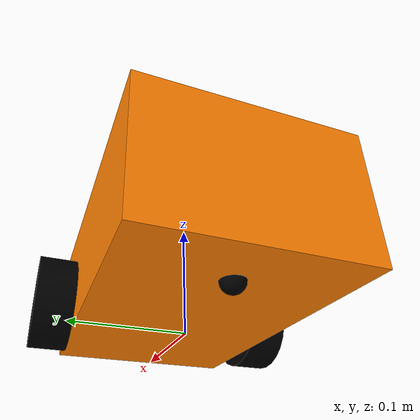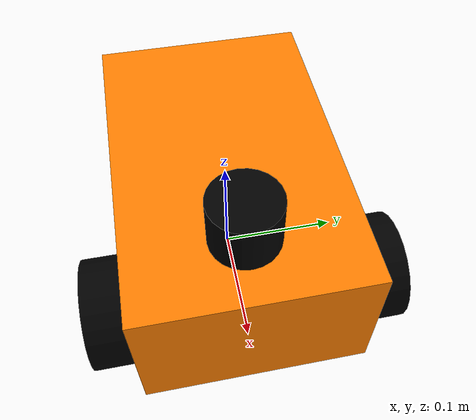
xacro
<?xml version="1.0"?>

<robot name="bumperbot" xmlns:xacro="http://ros.org/wiki/xacro">

    <xacro:property name = "base_length" value = "0.280"/>
    <xacro:property name = "base_width" value = "0.180"/>
    <xacro:property name = "base_height" value = "0.115"/>
    <xacro:property name = "wheel_radius" value = "0.044"/>
    <xacro:property name = "wheel_length" value = "0.035"/>
    <xacro:property name = "laser_radius" value = "0.0275"/>
    <xacro:property name = "laser_length" value = "0.0425"/>

    <!-- Load Simulated or Real Hardware Interfaces -->
    <xacro:arg name="is_sim" default="false"/>

    <!-- Include ros2_control Plugins -->
    <xacro:include filename="$(find bumperbot_description)/urdf/bumperbot_ros2_control.xacro" />

    <link name="base_footprint"/>

    <link name = "base_link">

        <inertial>
            <mass value = "2.5"/>
            <origin rpy = "0 0 0" xyz = "0 0 0"/>
            <inertia ixx = "0.009505" ixy = "0" ixz = "0" iyy = "0.019089" iyz = "0" izz = "0.023083"/>
        </inertial>

        <visual>
            <origin rpy = "0 0 0" xyz = "0 0 0"/>
            <geometry>
                <box size = "${base_length} ${base_width} ${base_height}"/>
            </geometry>
            <material name = "orange">
                <color rgba = "1 0.5 0 1"/>
            </material>
        </visual>

        <collision>
            <origin rpy = "0 0 0" xyz = "0 0 0"/>
            <geometry>
                <box size = "${base_length} ${base_width} ${base_height}"/>
            </geometry>
        </collision>

    </link>

    <joint name = "base_joint" type = "fixed">

        <parent link = "base_footprint"/>
        <child link = "base_link"/>
        <origin rpy = "0 0 0" xyz = "0 0 0.0675"/>

    </joint>

    <link name = "right_wheel_link">

        <inertial>
            <mass value = "0.05"/>
            <origin rpy = "1.57 0 0" xyz = "0 0 0"/>
            <inertia ixx = "0.000029" ixy = "0" ixz = "0" iyy = "0.000029" iyz = "0" izz = "0.000048"/>
        </inertial>

        <visual>
            <origin rpy = "1.57 0 0" xyz = "0 0 0"/>
            <geometry>
                <cylinder radius = "${wheel_radius}" length = "${wheel_length}"/>
            </geometry>
            <material name = "black">
                <color rgba = "0 0 0 1"/>
            </material>
        </visual>

        <collision>
            <origin rpy = "1.57 0 0" xyz = "0 0 0"/>
            <geometry>
                <cylinder radius = "${wheel_radius}" length = "${wheel_length}"/>
            </geometry>
        </collision>

    </link>

    <joint name = "right_wheel_joint" type = "continuous">

        <parent link = "base_link"/>
        <child link = "right_wheel_link"/>
        <axis xyz = "0 1 0"/>
        <origin rpy = "0 0 0" xyz = "0.08 -0.1075 -0.0235"/>

    </joint>

    <link name = "left_wheel_link">

        <inertial>
            <mass value = "0.05"/>
            <origin rpy = "-1.57 0 0" xyz = "0 0 0"/>
            <inertia ixx = "0.000029" ixy = "0" ixz = "0" iyy = "0.000029" iyz = "0" izz = "0.000048"/>
        </inertial>

        <visual>
            <origin rpy = "-1.57 0 0" xyz = "0 0 0"/>
            <geometry>
                <cylinder radius = "${wheel_radius}" length = "${wheel_length}"/>
            </geometry>
            <material name = "black">
                <color rgba = "0 0 0 1"/>
            </material>
        </visual>

        <collision>
            <origin rpy = "-1.57 0 0" xyz = "0 0 0"/>
            <geometry>
                <cylinder radius = "${wheel_radius}" length = "${wheel_length}"/>
            </geometry>
        </collision>

    </link>

    <joint name = "left_wheel_joint" type = "continuous">

        <parent link = "base_link"/>
        <child link = "left_wheel_link"/>
        <axis xyz = "0 1 0"/>
        <origin rpy = "0 0 0" xyz = "0.08 0.1075 -0.0235"/>

    </joint>

    <link name = "castor_link">

        <inertial>
            <mass value = "0.02"/>
            <origin rpy = "0 0 0" xyz = "0 0 0"/>
            <inertia ixx = "0.0000008" ixy = "0" ixz = "0" iyy = "0.0000008" iyz = "0" izz = "0.0000008"/>
        </inertial>

        <visual>
            <origin rpy = "0 0 0" xyz = "0 0 0"/>
            <geometry>
                <sphere radius = "0.01"/>
            </geometry>
            <material name = "black">
                <color rgba = "0 0 0 1"/>
            </material>
        </visual>

        <collision>
            <origin rpy = "0 0 0" xyz = "0 0 0"/>
            <geometry>
                <sphere radius = "0.01"/>
            </geometry>
        </collision>

    </link>

    <joint name = "castor_joint" type = "fixed">

        <parent link = "base_link"/>
        <child link = "castor_link"/>
        <origin rpy = "0 0 0" xyz = "-0.09 0 -0.0575"/>

    </joint>

    <link name = "laser_link">

        <inertial>
            <mass value = "0.110"/>
            <origin rpy = "0 0 0" xyz = "0 0 0"/>
            <inertia ixx = "0.000037354167" ixy = "0" ixz = "0" iyy = "0.000037354167" iyz = "0" izz = "0.00004159375"/>
        </inertial>

        <visual>
            <origin rpy = "0 0 0" xyz = "0 0 0"/>
            <geometry>
                <cylinder radius = "${laser_radius}" length = "${laser_length}"/>
            </geometry>
            <material name = "black">
                <color rgba = "0 0 0 1"/>
            </material>
        </visual>

        <collision>
            <origin rpy = "0 0 0" xyz = "0 0 0"/>
            <geometry>
                <cylinder radius = "${laser_radius}" length = "${laser_length}"/>
            </geometry>
        </collision>

    </link>

    <joint name = "laser_joint" type = "fixed">

        <origin xyz = "0.085 0 0.07875" rpy = "0 0 0"/>
        <parent link = "base_link"/>
        <child link = "laser_link"/>

    </joint>

</robot>
